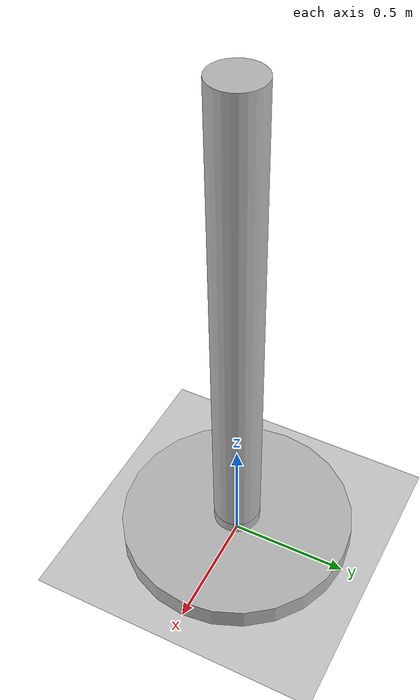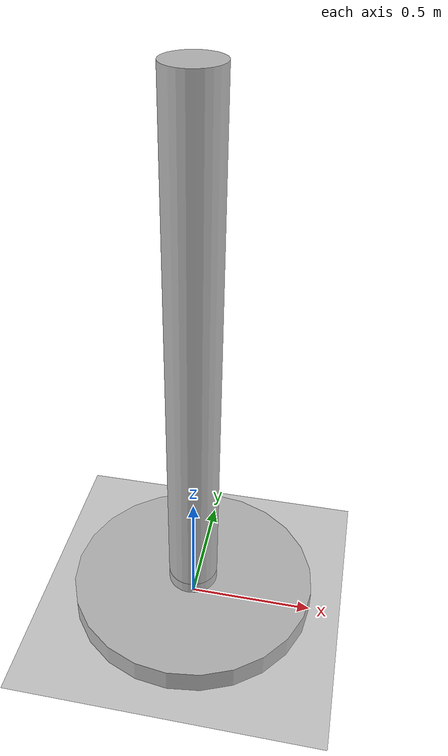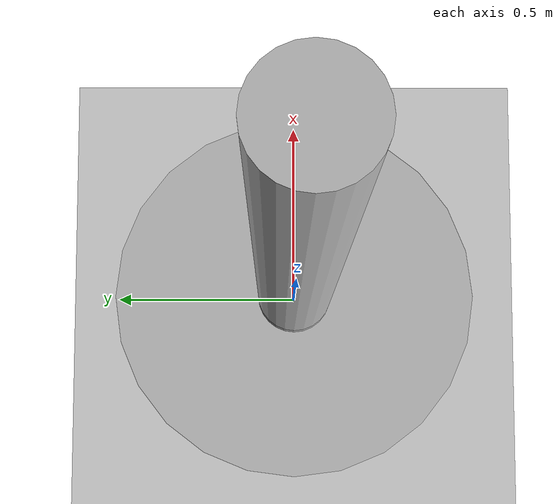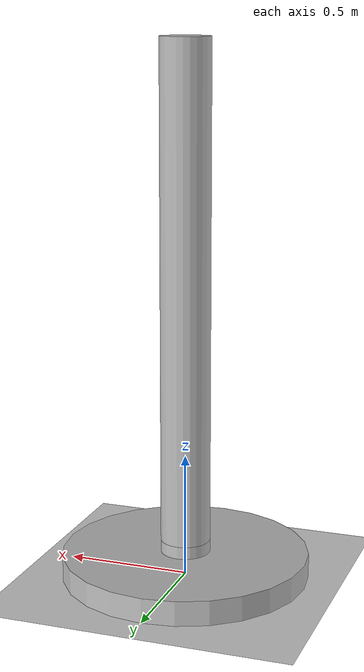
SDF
<?xml version="1.0" ?>

<sdf version="1.5">
	<world name="default">
		<!-- A global light source -->
		<include>
			<uri>model://sun</uri>
		</include>

		<!-- A ground plane -->
		<include>
			<uri>model://ground_plane</uri>
		</include>

        <!-- Our custom model -->
		<include>
			<uri>model://my1stmodel</uri>
		</include>

	</world>
</sdf>

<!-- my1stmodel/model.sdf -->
<sdf version="1.5">
  <model name="arm">
    <link name="base">
     <pose>0 0 0.05 0 0 0</pose>
      <visual name="visual">
        <geometry>
          <cylinder>
            <radius>.5</radius>
            <length>.1</length>
          </cylinder>
        </geometry>
      </visual>

      <collision name="collision">
        <geometry>
         <cylinder>
            <radius>.5</radius>
            <length>.1</length>
          </cylinder>
        </geometry>
      </collision>
    </link>

    <link name="arm_1">
      <pose>0 0 0.125 0 0 0</pose>
      <visual name="visual">
        <geometry>
          <cylinder>
            <radius>.1</radius>
            <length>0.05</length>
          </cylinder>
        </geometry>
      </visual>
      <collision name="c1">
      <geometry>
          <cylinder>
            <radius>.1</radius>
            <length>0.05</length>
          </cylinder>
        </geometry>
      </collision>

</link>

<link name="arm_2">
      <pose>0 0 1.15 0 0 0</pose>
      <visual name="visual">
        <geometry>
          <cylinder>
            <radius>.1</radius>
            <length>2</length>
          </cylinder>
        </geometry>
      </visual>
      <collision name="c2">
      <geometry>
          <cylinder>
            <radius>.1</radius>
            <length>0.05</length>
          </cylinder>
        </geometry>
      </collision>

</link>

    <joint name="base_arm_1" type="revolute">
      <parent>base</parent>
      <child>arm_1</child>
      <pose>0 0 -0.025 0 0 0</pose>
      <axis>
        <xyz>0 0 1</xyz>
      </axis>
    </joint>

    <joint name="arm_1_arm_2" type="revolute">
      <parent>arm_1</parent>
      <child>arm_2</child>
      <pose>0 0 -1 0 0 0</pose>
      <axis>
        <xyz>1 0 0</xyz>
      </axis>
    </joint>

  </model>
</sdf>
